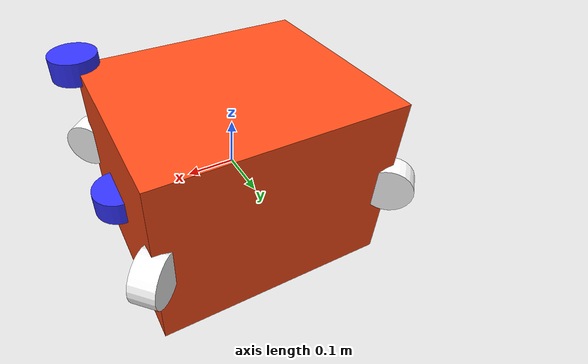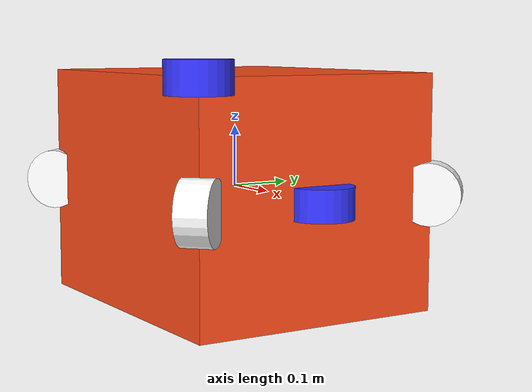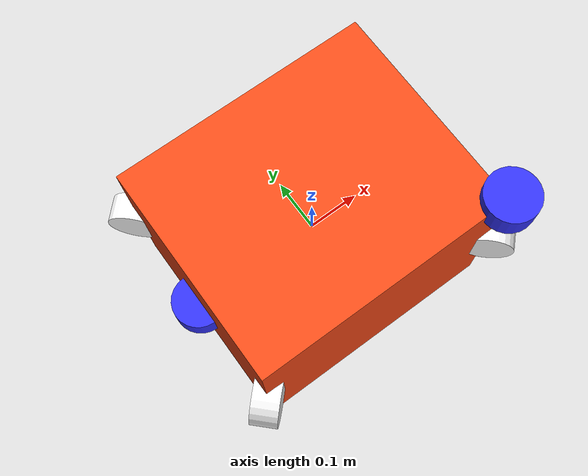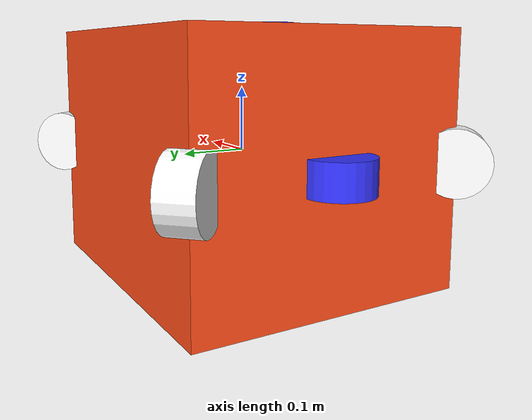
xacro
<?xml version="1.0"?>
<robot xmlns:xacro="http://www.ros.org/wiki/xacro"  name="nugv_core">

    <!-- COLOR -->
    <material name="white">
        <color rgba="1 1 1 1" />
    </material>

    <material name="orange">
        <color rgba="1 0.3 0.1 1"/>
    </material>

    <material name="blue">
        <color rgba="0.2 0.2 1 1"/>
    </material>

    <material name="black">
        <color rgba="0 0 0 1"/>
    </material>

    <!-- NUGV PROPERTIES -->
    <!-- Unit: Meters -->

    <!-- Chasis -->
    <xacro:property name="chasis_length" value="0.5" />
    <xacro:property name="chasis_width" value="0.42" />
    <xacro:property name="chasis_height" value="0.38" />

    <!-- Thruster -->
    <xacro:property name="thruster_radius" value="0.05" />
    <xacro:property name="thruster_length" value="0.05" />

    <!-- BASE LINK -->
    <link name="base_link"/>

    <!-- CHASSIS LINK -->
    <joint name="chassis_joint" type="fixed">
        <parent link="base_link"/>
        <child link="chassis"/>
    </joint>

    <link name="chassis">
        <visual>
            <geometry>
                        <!--       x                y               z           in meters-->
                <box size="${chasis_length} ${chasis_width} ${chasis_height}"/>
            </geometry>
            <material name="orange"/>
        </visual>
    </link>

    <!-- FRONT LEFT THRUSTER LINK -->
    <joint name="thruster_front_left_joint" type="continuous">
        <parent link="base_link"/>
        <child link="thruster_front_left"/>
        <origin xyz="0.25 0.21 0" rpy="-${pi/2} 0 ${pi/4}" />
        <!-- axis of rotation; in this case, thruster rotates around the Z axis -->
        <axis xyz="0 0 1"/>
    </joint>

    <link name="thruster_front_left">
        <visual>
            <geometry>
                <cylinder radius="${thruster_radius}" length="${thruster_length}"/>
            </geometry>
            <material name="white"/>
        </visual>
    </link>

    <!-- FRONT RIGHT THRUSTER LINK -->
    <joint name="thruster_front_right_joint" type="continuous">
        <parent link="base_link"/>
        <child link="thruster_front_right"/>
        <origin xyz="0.25 -0.21 0" rpy="-${pi/2} 0 ${pi*3/4}" />
        <!-- axis of rotation; in this case, thruster rotates around the Z axis -->
        <axis xyz="0 0 1"/>
    </joint>

    <link name="thruster_front_right">
        <visual>
            <geometry>
                <cylinder radius="${thruster_radius}" length="${thruster_length}"/>
            </geometry>
            <material name="white"/>
        </visual>
    </link>

    <!-- BACK LEFT THRUSTER LINK -->
    <joint name="thruster_back_left_joint" type="continuous">
        <parent link="base_link"/>
        <child link="thruster_back_left"/>
        <origin xyz="-0.25 0.21 0" rpy="-${pi/2} 0 ${pi*3/4}" />
        <!-- axis of rotation; in this case, thruster rotates around the Z axis -->
        <axis xyz="0 0 1"/>
    </joint>

    <link name="thruster_back_left">
        <visual>
            <geometry>
                <cylinder radius="${thruster_radius}" length="${thruster_length}"/>
            </geometry>
            <material name="white"/>
        </visual>
    </link>

    <!-- BACK RIGHT THRUSTER LINK -->
    <joint name="thruster_back_right_joint" type="continuous">
        <parent link="base_link"/>
        <child link="thruster_back_right"/>
        <origin xyz="-0.25 -0.21 0" rpy="-${pi/2} 0 ${pi/4}" />
        <!-- axis of rotation; in this case, thruster rotates around the Z axis -->
        <axis xyz="0 0 1"/>
    </joint>

    <link name="thruster_back_right">
        <visual>
            <geometry>
                <cylinder radius="${thruster_radius}" length="${thruster_length}"/>
            </geometry>
            <material name="white"/>
        </visual>
    </link>

    <!-- FRONT DEPTH THRUSTER LINK -->
    <joint name="depth_thruster_front_joint" type="continuous">
        <parent link="base_link"/>
        <child link="depth_thruster_front"/>
        <origin xyz="0.25 0 0" rpy="${pi} 0 0" />
        <!-- axis of rotation; in this case, thruster rotates around the Z axis -->
        <axis xyz="0 0 1"/>
    </joint>

    <link name="depth_thruster_front">
        <visual>
            <geometry>
                <cylinder radius="${thruster_radius}" length="${thruster_length}"/>
            </geometry>
            <material name="blue"/>
        </visual>
    </link>

    <!-- BACK DEPTH THRUSTER LINK -->
    <joint name="depth_thruster_back_joint" type="continuous">
        <parent link="base_link"/>
        <child link="depth_thruster_back"/>
        <origin xyz="-0.25 0 0" rpy="${pi} 0 0" />
        <!-- axis of rotation; in this case, thruster rotates around the Z axis -->
        <axis xyz="0 0 1"/>
    </joint>

    <link name="depth_thruster_back">
        <visual>
            <geometry>
                <cylinder radius="${thruster_radius}" length="${thruster_length}"/>
            </geometry>
            <material name="blue"/>
        </visual>
    </link>

    <!-- IMU LINK -->
    <joint name="imu_joint" type="fixed">
        <parent link="base_link"/>
        <child link="imu"/>
        <origin xyz="0 0 0.1" rpy="0 0 0" />
    </joint>

    <link name="imu">
        <visual>
            <geometry>
                <cylinder radius="0.05" length="0.01"/>
            </geometry>
            <material name="black"/>
        </visual>
    </link>

    <!-- SONAR LINK -->
    <joint name="sonar_joint" type="fixed">
        <parent link="base_link"/>
        <child link="sonar"/>
        <origin xyz="0.25 -0.21 ${chasis_height/2}" rpy="0 0 0" />
    </joint>

    <link name="sonar">
        <visual>
            <geometry>
                <cylinder radius="0.05" length="0.05"/>
            </geometry>
            <material name="blue"/>
        </visual>
    </link>

    <!-- DIGITAL CAMERA LINK -->

</robot>
